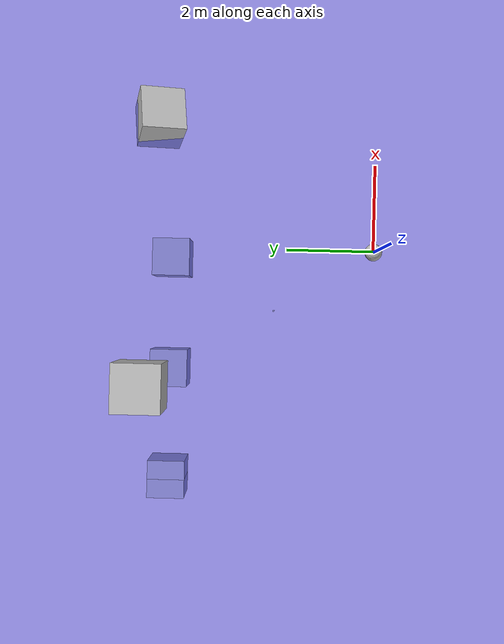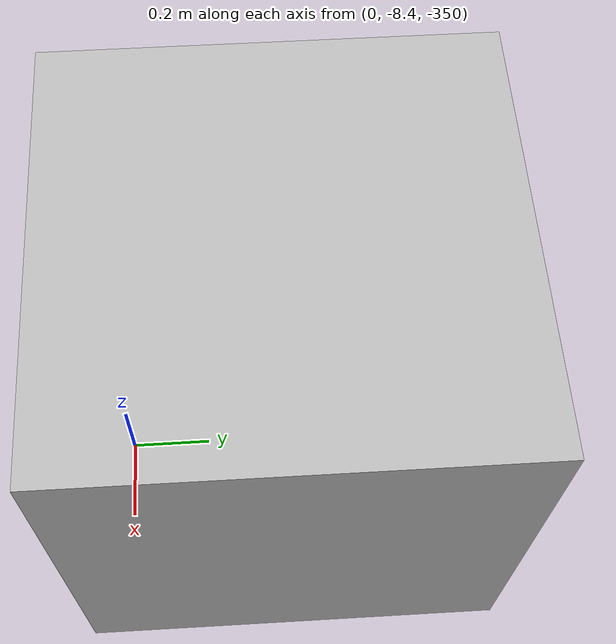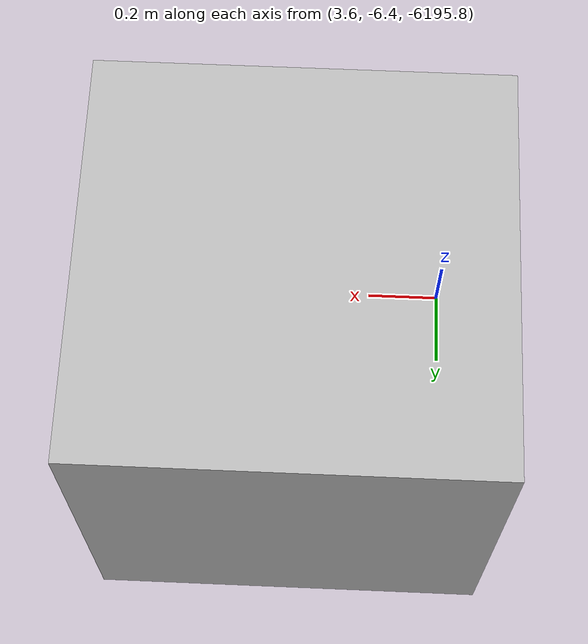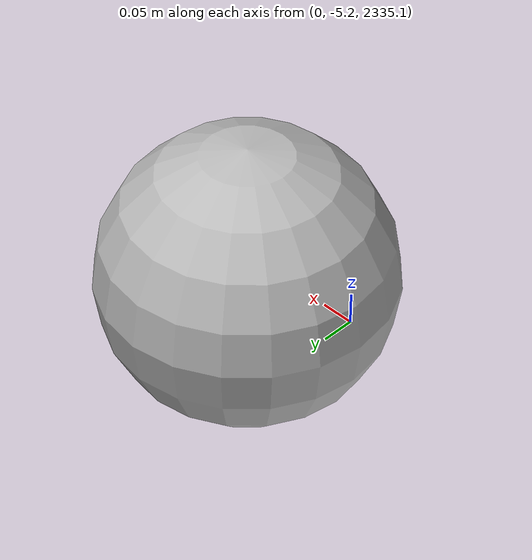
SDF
<sdf version='1.9'>
  <world name='buoyancy'>
    <physics name='1ms' type='ode'>
      <max_step_size>0.001</max_step_size>
      <real_time_factor>1</real_time_factor>
      <real_time_update_rate>1000</real_time_update_rate>
    </physics>
    <plugin name='ignition::gazebo::systems::Physics' filename='ignition-gazebo-physics-system'/>
    <plugin name='ignition::gazebo::systems::UserCommands' filename='ignition-gazebo-user-commands-system'/>
    <plugin name='ignition::gazebo::systems::SceneBroadcaster' filename='ignition-gazebo-scene-broadcaster-system'/>
    <plugin name='ignition::gazebo::systems::Buoyancy' filename='ignition-gazebo-buoyancy-system'>
      <graded_buoyancy>
        <default_density>1000</default_density>
        <density_change>
          <above_depth>0</above_depth>
          <density>1</density>
        </density_change>
      </graded_buoyancy>
      <enable>lighter_than_water::ball::body</enable>
      <enable>lighter_than_water::box</enable>
      <enable>balloon_lighter_than_air</enable>
      <enable>box_neutral_buoyancy</enable>
      <enable>box_neutral_buoyancy_collision_offset</enable>
      <enable>multi_collision_neutral_buoyancy</enable>
      <enable>box_negative_buoyancy</enable>
    </plugin>
    <gravity>0 0 -9.8</gravity>
    <magnetic_field>6e-06 2.3e-05 -4.2e-05</magnetic_field>
    <atmosphere type='adiabatic'/>
    <scene>
      <ambient>0.4 0.4 0.4 1</ambient>
      <background>0.7 0.7 0.7 1</background>
      <shadows>true</shadows>
    </scene>
    <model name='water_plane'>
      <static>true</static>
      <link name='link'>
        <visual name='water_plane'>
          <geometry>
            <plane>
              <size>100 100</size>
              <normal>0 0 1</normal>
            </plane>
          </geometry>
          <material>
            <ambient>0 0 1 0.5</ambient>
            <diffuse>0 0 1 0.5</diffuse>
            <specular>0 0 1 0.5</specular>
          </material>
        </visual>
        <pose>0 0 0 0 -0 0</pose>
        <inertial>
          <pose>0 0 0 0 -0 0</pose>
          <mass>1</mass>
          <inertia>
            <ixx>1</ixx>
            <ixy>0</ixy>
            <ixz>0</ixz>
            <iyy>1</iyy>
            <iyz>0</iyz>
            <izz>1</izz>
          </inertia>
        </inertial>
        <enable_wind>false</enable_wind>
      </link>
      <pose>0 0 0 0 -0 0</pose>
      <self_collide>false</self_collide>
    </model>

    <model name='lighter_than_water'>
      <pose>0 0 -0.012618 0 -0 0</pose>
      <model name='ball'>
        <link name='body'>
          <pose>0 0 0 0 0 0</pose>
          <inertial>
            <mass>25</mass>
            <inertia>
              <ixx>86.289078218599656</ixx>
              <ixy>0</ixy>
              <ixz>0</ixz>
              <iyy>86.289078218599656</iyy>
              <iyz>0</iyz>
              <izz>5.0265482457436708</izz>
            </inertia>
          </inertial>
          <visual name='body_visual'>
            <geometry>
              <sphere>
                <radius>0.20000000000000001</radius>
              </sphere>
            </geometry>
          </visual>
          <collision name='body_collision'>
            <geometry>
              <sphere>
                <radius>0.20000000000000001</radius>
              </sphere>
            </geometry>
            <surface>
              <friction>
                <ode/>
              </friction>
              <bounce/>
              <contact/>
            </surface>
          </collision>
        </link>
      </model>
      <model name='box'>
        <pose>3 5 0 0.3 0.2 0.1</pose>
        <link name='body'>
          <inertial>
            <mass>200</mass>
            <inertia>
              <ixx>33.329999999999998</ixx>
              <ixy>0</ixy>
              <ixz>0</ixz>
              <iyy>33.329999999999998</iyy>
              <iyz>0</iyz>
              <izz>33.329999999999998</izz>
            </inertia>
          </inertial>
          <visual name='body_visual'>
            <geometry>
              <box>
                <size>1 1 1</size>
              </box>
            </geometry>
          </visual>
          <collision name='body_collision'>
            <geometry>
              <box>
                <size>1 1 1</size>
              </box>
            </geometry>
            <surface>
              <friction>
                <ode/>
              </friction>
              <bounce/>
              <contact/>
            </surface>
          </collision>
        </link>
      </model>
      <static>false</static>
      <self_collide>false</self_collide>
    </model>
    <model name='balloon_lighter_than_air'>
      <pose>0 -5 2335.31 0 -0 0</pose>
      <link name='body'>
        <pose>0 0 0 0 -0 0</pose>
        <inertial>
          <mass>0.10000000000000001</mass>
          <inertia>
            <ixx>86.289100000000005</ixx>
            <ixy>0</ixy>
            <ixz>0</ixz>
            <iyy>86.289100000000005</iyy>
            <iyz>0</iyz>
            <izz>5.0265500000000003</izz>
          </inertia>
          <pose>0 0 0 0 -0 0</pose>
        </inertial>
        <visual name='body_visual'>
          <geometry>
            <sphere>
              <radius>0.20000000000000001</radius>
            </sphere>
          </geometry>
        </visual>
        <collision name='body_collision'>
          <geometry>
            <sphere>
              <radius>0.20000000000000001</radius>
            </sphere>
          </geometry>
          <surface>
            <friction>
              <ode/>
            </friction>
            <bounce/>
            <contact/>
          </surface>
        </collision>
        <enable_wind>false</enable_wind>
      </link>
      <static>false</static>
      <self_collide>false</self_collide>
    </model>
    <model name='box_neutral_buoyancy'>
      <pose>0 5 -3 0 -0 0</pose>
      <link name='body'>
        <inertial>
          <mass>1000</mass>
          <pose>0 0 0.1 0 -0 0</pose>
          <inertia>
            <ixx>86.289100000000005</ixx>
            <ixy>0</ixy>
            <ixz>0</ixz>
            <iyy>86.289100000000005</iyy>
            <iyz>0</iyz>
            <izz>5.0265500000000003</izz>
          </inertia>
        </inertial>
        <visual name='body_visual'>
          <geometry>
            <box>
              <size>1 1 1</size>
            </box>
          </geometry>
        </visual>
        <collision name='body_collision'>
          <geometry>
            <box>
              <size>1 1 1</size>
            </box>
          </geometry>
          <surface>
            <friction>
              <ode/>
            </friction>
            <bounce/>
            <contact/>
          </surface>
        </collision>
        <pose>0 0 0 0 -0 0</pose>
        <enable_wind>false</enable_wind>
      </link>
      <static>false</static>
      <self_collide>false</self_collide>
    </model>
    <model name='box_neutral_buoyancy_collision_offset'>
      <pose>-3 5 2 0 -0 0</pose>
      <link name='body'>
        <inertial>
          <mass>1000</mass>
          <pose>0 0 -4.9 0 -0 0</pose>
          <inertia>
            <ixx>86.289100000000005</ixx>
            <ixy>0</ixy>
            <ixz>0</ixz>
            <iyy>86.289100000000005</iyy>
            <iyz>0</iyz>
            <izz>5.0265500000000003</izz>
          </inertia>
        </inertial>
        <visual name='link_origin'>
          <geometry>
            <box>
              <size>1 1 1</size>
            </box>
          </geometry>
        </visual>
        <visual name='collision_origin'>
          <pose>0 0 -5 0 0 0</pose>
          <geometry>
            <box>
              <size>1 1 1</size>
            </box>
          </geometry>
        </visual>
        <collision name='buoyancy_volume'>
          <pose>0 0 -5 0 0 0</pose>
          <geometry>
            <box>
              <size>1 1 1</size>
            </box>
          </geometry>
          <surface>
            <friction>
              <ode/>
            </friction>
            <bounce/>
            <contact/>
          </surface>
        </collision>
        <pose>0 0 0 0 -0 0</pose>
        <enable_wind>false</enable_wind>
      </link>
      <static>false</static>
      <self_collide>false</self_collide>
    </model>
    <model name='multi_collision_neutral_buoyancy'>
      <pose>-6 5 -3 0 -0 0</pose>
      <link name='body'>
        <inertial>
          <mass>1000</mass>
          <pose>0 0 0.1 0 -0 0</pose>
          <inertia>
            <ixx>86.289100000000005</ixx>
            <ixy>0</ixy>
            <ixz>0</ixz>
            <iyy>86.289100000000005</iyy>
            <iyz>0</iyz>
            <izz>5.0265500000000003</izz>
          </inertia>
        </inertial>
        <visual name='collision_1_vis'>
          <pose>-0.25 0 0 0 0 0</pose>
          <geometry>
            <box>
              <size>0.5 1 1</size>
            </box>
          </geometry>
        </visual>
        <visual name='collision_2_vis'>
          <pose>0.25 0 0 0 0 0</pose>
          <geometry>
            <box>
              <size>0.5 1 1</size>
            </box>
          </geometry>
        </visual>
        <collision name='collision_1'>
          <pose>-0.25 0 0 0 0 0</pose>
          <geometry>
            <box>
              <size>0.5 1 1</size>
            </box>
          </geometry>
          <surface>
            <friction>
              <ode/>
            </friction>
            <bounce/>
            <contact/>
          </surface>
        </collision>
        <collision name='collision_2'>
          <pose>0.25 0 0 0 0 0</pose>
          <geometry>
            <box>
              <size>0.5 1 1</size>
            </box>
          </geometry>
          <surface>
            <friction>
              <ode/>
            </friction>
            <bounce/>
            <contact/>
          </surface>
        </collision>
        <pose>0 0 0 0 -0 0</pose>
        <enable_wind>false</enable_wind>
      </link>
      <static>false</static>
      <self_collide>false</self_collide>
    </model>
    <model name='box_negative_buoyancy'>
      <pose>0 -8 -349.518 0 -0 0</pose>
      <link name='body'>
        <inertial>
          <mass>1050</mass>
          <pose>0 0 0.1 0 -0 0</pose>
          <inertia>
            <ixx>86.289100000000005</ixx>
            <ixy>0</ixy>
            <ixz>0</ixz>
            <iyy>86.289100000000005</iyy>
            <iyz>0</iyz>
            <izz>5.0265500000000003</izz>
          </inertia>
        </inertial>
        <visual name='body_visual'>
          <geometry>
            <box>
              <size>1 1 1</size>
            </box>
          </geometry>
        </visual>
        <collision name='body_collision'>
          <geometry>
            <box>
              <size>1 1 1</size>
            </box>
          </geometry>
          <surface>
            <friction>
              <ode/>
            </friction>
            <bounce/>
            <contact/>
          </surface>
        </collision>
        <pose>0 0 0 0 -0 0</pose>
        <enable_wind>false</enable_wind>
      </link>
      <static>false</static>
      <self_collide>false</self_collide>
    </model>
    <model name='box_no_buoyancy'>
      <pose>4 -6 -6195.25 0 -0 0</pose>
      <link name='body'>
        <inertial>
          <mass>1050</mass>
          <pose>0 0 0.1 0 -0 0</pose>
          <inertia>
            <ixx>86.289100000000005</ixx>
            <ixy>0</ixy>
            <ixz>0</ixz>
            <iyy>86.289100000000005</iyy>
            <iyz>0</iyz>
            <izz>5.0265500000000003</izz>
          </inertia>
        </inertial>
        <visual name='body_visual'>
          <geometry>
            <box>
              <size>1 1 1</size>
            </box>
          </geometry>
        </visual>
        <collision name='body_collision'>
          <geometry>
            <box>
              <size>1 1 1</size>
            </box>
          </geometry>
          <surface>
            <friction>
              <ode/>
            </friction>
            <bounce/>
            <contact/>
          </surface>
        </collision>
        <pose>0 0 0 0 -0 0</pose>
        <enable_wind>false</enable_wind>
      </link>
      <static>false</static>
      <self_collide>false</self_collide>
    </model>
    <light name='sun' type='directional'>
      <pose>0 0 10 0 -0 0</pose>
      <cast_shadows>true</cast_shadows>
      <intensity>1</intensity>
      <direction>-0.5 0.1 -0.9</direction>
      <diffuse>1 1 1 1</diffuse>
      <specular>0.5 0.5 0.5 1</specular>
      <attenuation>
        <range>1000</range>
        <linear>0.01</linear>
        <constant>0.90000000000000002</constant>
        <quadratic>0.001</quadratic>
      </attenuation>
      <spot>
        <inner_angle>0</inner_angle>
        <outer_angle>0</outer_angle>
        <falloff>0</falloff>
      </spot>
    </light>
  </world>
</sdf>
